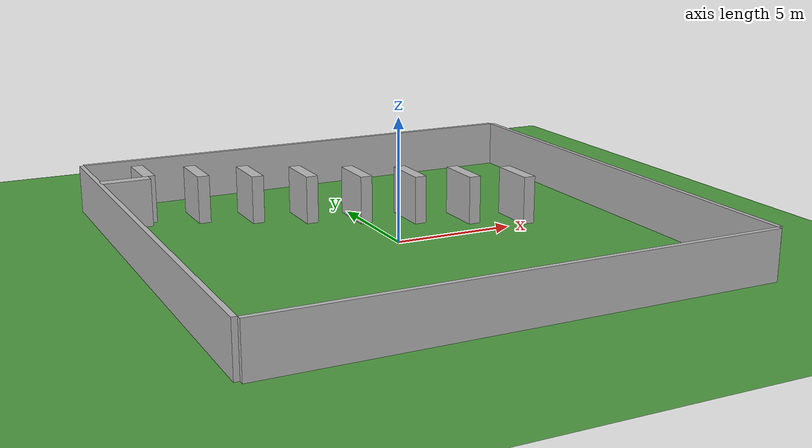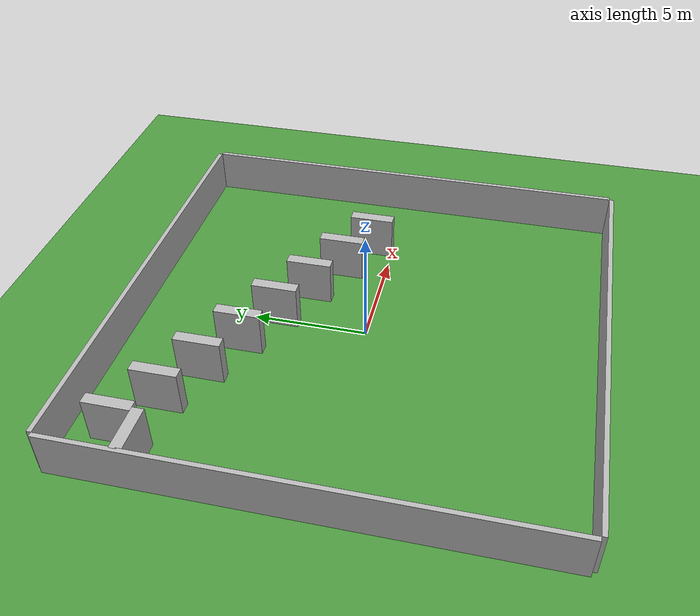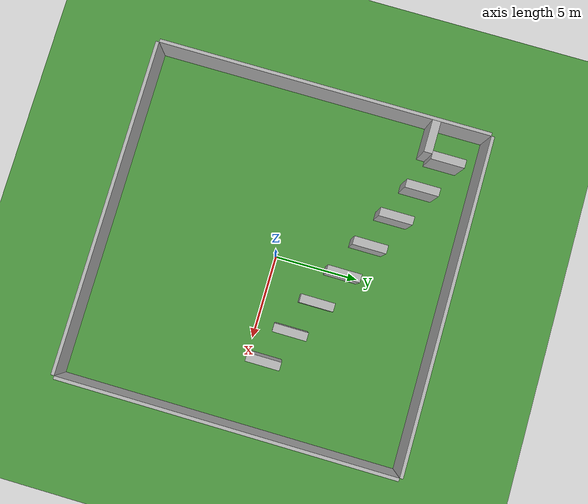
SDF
<sdf version="1.7">
 <world name="zigzag_narrow_passages">
  <physics type="ode">
   <real_time_update_rate>1000</real_time_update_rate>
   <max_step_size>0.001</max_step_size>
   <real_time_factor>1</real_time_factor>
   <gravity>0 0 -9.81</gravity>
  </physics>
  <model name="ground_plane">
   <static>1</static>
   <link name="ground_link">
    <collision name="collision">
     <geometry><plane><normal>0 0 1</normal><size>20 20</size></plane></geometry>
    </collision>
    <visual name="visual">
     <geometry><plane><normal>0 0 1</normal><size>20 20</size></plane></geometry>
     <material>
      <script><uri>file://media/materials/scripts/gazebo.material</uri><name>Gazebo/Grass</name></script>
     </material>
    </visual>
   </link>
  </model>
  <model name="wall_north">
   <static>1</static>
   <pose>0 10.1 1 0 -0 0</pose>
   <link name="link">
    <collision name="collision"><geometry><box><size>20 0.2 2</size></box></geometry></collision>
    <visual name="visual"><geometry><box><size>20 0.2 2</size></box></geometry></visual>
   </link>
  </model>
  <model name="wall_south">
   <static>1</static>
   <pose>0 -10.1 1 0 -0 0</pose>
   <link name="link">
    <collision name="collision"><geometry><box><size>20 0.2 2</size></box></geometry></collision>
    <visual name="visual"><geometry><box><size>20 0.2 2</size></box></geometry></visual>
   </link>
  </model>
  <model name="wall_east">
   <static>1</static>
   <pose>10.1 0 1 0 -0 0</pose>
   <link name="link">
    <collision name="collision"><geometry><box><size>0.2 20 2</size></box></geometry></collision>
    <visual name="visual"><geometry><box><size>0.2 20 2</size></box></geometry></visual>
   </link>
  </model>
  <model name="wall_west">
   <static>1</static>
   <pose>-10.1 0 1 0 -0 0</pose>
   <link name="link">
    <collision name="collision"><geometry><box><size>0.2 20 2</size></box></geometry></collision>
    <visual name="visual"><geometry><box><size>0.2 20 2</size></box></geometry></visual>
   </link>
  </model>
  <model name="zigzag_0">
   <static>1</static>
   <pose>-8 8 1 0 -0 0</pose>
   <link name="link">
    <collision name="collision"><geometry><box><size>0.5 2 2</size></box></geometry></collision>
    <visual name="visual"><geometry><box><size>0.5 2 2</size></box></geometry></visual>
   </link>
  </model>
  <model name="zigzag_1">
   <static>1</static>
   <pose>-6 7 1 0 -0 0</pose>
   <link name="link">
    <collision name="collision"><geometry><box><size>0.5 2 2</size></box></geometry></collision>
    <visual name="visual"><geometry><box><size>0.5 2 2</size></box></geometry></visual>
   </link>
  </model>
  <model name="zigzag_2">
   <static>1</static>
   <pose>-4 6 1 0 -0 0</pose>
   <link name="link">
    <collision name="collision"><geometry><box><size>0.5 2 2</size></box></geometry></collision>
    <visual name="visual"><geometry><box><size>0.5 2 2</size></box></geometry></visual>
   </link>
  </model>
  <model name="zigzag_3">
   <static>1</static>
   <pose>-2 5 1 0 -0 0</pose>
   <link name="link">
    <collision name="collision"><geometry><box><size>0.5 2 2</size></box></geometry></collision>
    <visual name="visual"><geometry><box><size>0.5 2 2</size></box></geometry></visual>
   </link>
  </model>
  <model name="zigzag_4">
   <static>1</static>
   <pose>0 4 1 0 -0 0</pose>
   <link name="link">
    <collision name="collision"><geometry><box><size>0.5 2 2</size></box></geometry></collision>
    <visual name="visual"><geometry><box><size>0.5 2 2</size></box></geometry></visual>
   </link>
  </model>
  <model name="zigzag_5">
   <static>1</static>
   <pose>2 3 1 0 -0 0</pose>
   <link name="link">
    <collision name="collision"><geometry><box><size>0.5 2 2</size></box></geometry></collision>
    <visual name="visual"><geometry><box><size>0.5 2 2</size></box></geometry></visual>
   </link>
  </model>
  <model name="zigzag_6">
   <static>1</static>
   <pose>4 2 1 0 -0 0</pose>
   <link name="link">
    <collision name="collision"><geometry><box><size>0.5 2 2</size></box></geometry></collision>
    <visual name="visual"><geometry><box><size>0.5 2 2</size></box></geometry></visual>
   </link>
  </model>
  <model name="zigzag_7">
   <static>1</static>
   <pose>6 1 1 0 -0 0</pose>
   <link name="link">
    <collision name="collision"><geometry><box><size>0.5 2 2</size></box></geometry></collision>
    <visual name="visual"><geometry><box><size>0.5 2 2</size></box></geometry></visual>
   </link>
  </model>
  <light name="sun" type="directional">
   <pose>0 0 10 0 -0 0</pose>
   <diffuse>0.8 0.8 0.8 1</diffuse>
   <specular>0.2 0.2 0.2 1</specular>
   <attenuation>
    <range>1000</range>
    <constant>0.9</constant>
    <linear>0.01</linear>
    <quadratic>0.001</quadratic>
   </attenuation>
   <direction>-0.5 0.1 -0.9</direction>
   <spot><inner_angle>0</inner_angle><outer_angle>0</outer_angle><falloff>0</falloff></spot>
  </light>
  <gravity>0 0 -9.8</gravity>
  <magnetic_field>6e-06 2.3e-05 -4.2e-05</magnetic_field>
  <atmosphere type="adiabatic"/>
  <scene><ambient>0.4 0.4 0.4 1</ambient><background>0.7 0.7 0.7 1</background><shadows>1</shadows></scene>
  <spherical_coordinates>
   <surface_model>EARTH_WGS84</surface_model>
   <latitude_deg>0</latitude_deg>
   <longitude_deg>0</longitude_deg>
   <elevation>0</elevation>
   <heading_deg>0</heading_deg>
  </spherical_coordinates>
  <model name="zigzag_0_clone">
   <static>1</static>
   <pose>-9.05274 6.75324 1 0 -0 1.56894</pose>
   <link name="link">
    <collision name="collision"><geometry><box><size>0.5 2 2</size></box></geometry></collision>
    <visual name="visual"><geometry><box><size>0.5 2 2</size></box></geometry></visual>
   </link>
  </model>
 </world>
</sdf>
